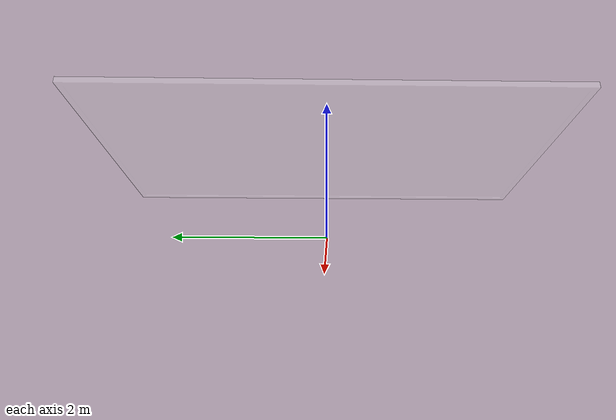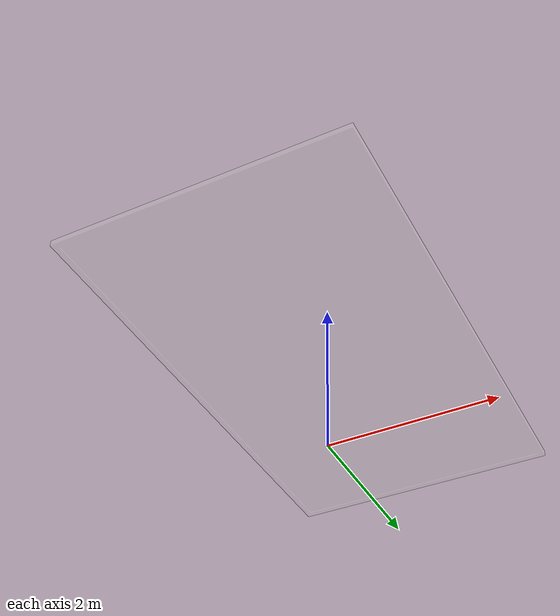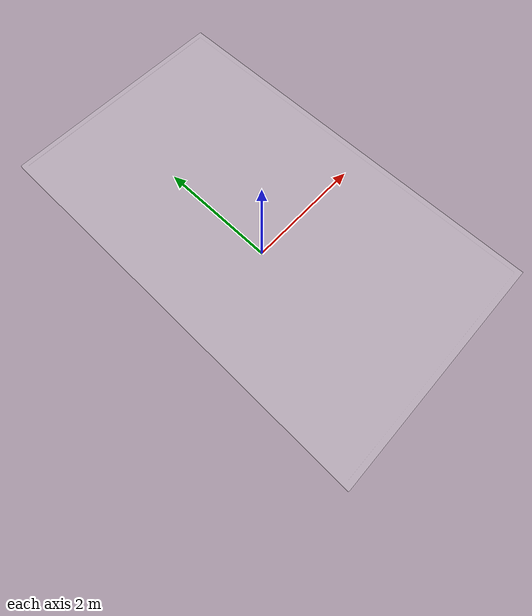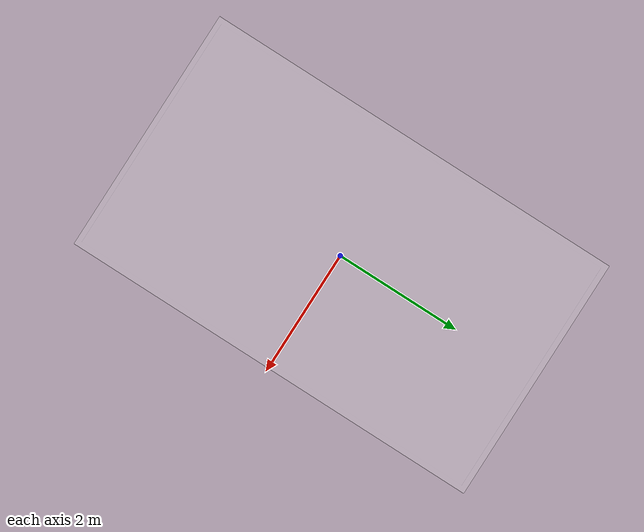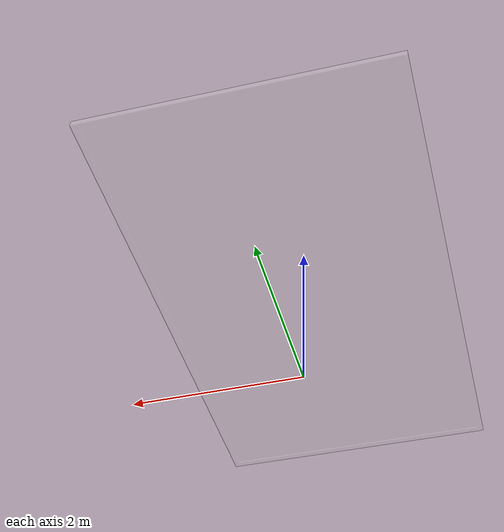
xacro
<?xml version="0.0"?>
<robot name="urdf_robot" xmlns:xacro="http://www.ros.org/wiki/xacro">
  <xacro:arg name="mesh_prefix" default="$(find gpd_ros)"/>
  <link name="ceiling">
    <contact>
      <rolling_friction value="0.03" />
      <spinning_friction value="0.03" />
    </contact>

    <inertial>
      <origin rpy="0 0 0" xyz="0 0 0" />
      <mass value="0.0" />
      <inertia ixx="1" ixy="0" ixz="0" iyy="1" iyz="0" izz="1" />
    </inertial>
    <visual>
      <origin rpy="0 0 0" xyz="0 0 1.875" />
      <geometry>
        <mesh filename="$(arg mesh_prefix)/urdf/meshes/ff_floor.obj" scale="0.5 0.5 0.5" />
      </geometry>
      <material name="white">
        <color rgba="1 1 1 0.2" />
        <specular rgb="11 1 1" />
      </material>
    </visual>
    <collision>
      <origin rpy="0 0 0" xyz="0 0 1.875" />
      <geometry>
        <mesh filename="$(arg mesh_prefix)/urdf/meshes/ff_floor.obj" scale="0.5 0.5 0.5" />
      </geometry>
    </collision>
  </link>
</robot>
